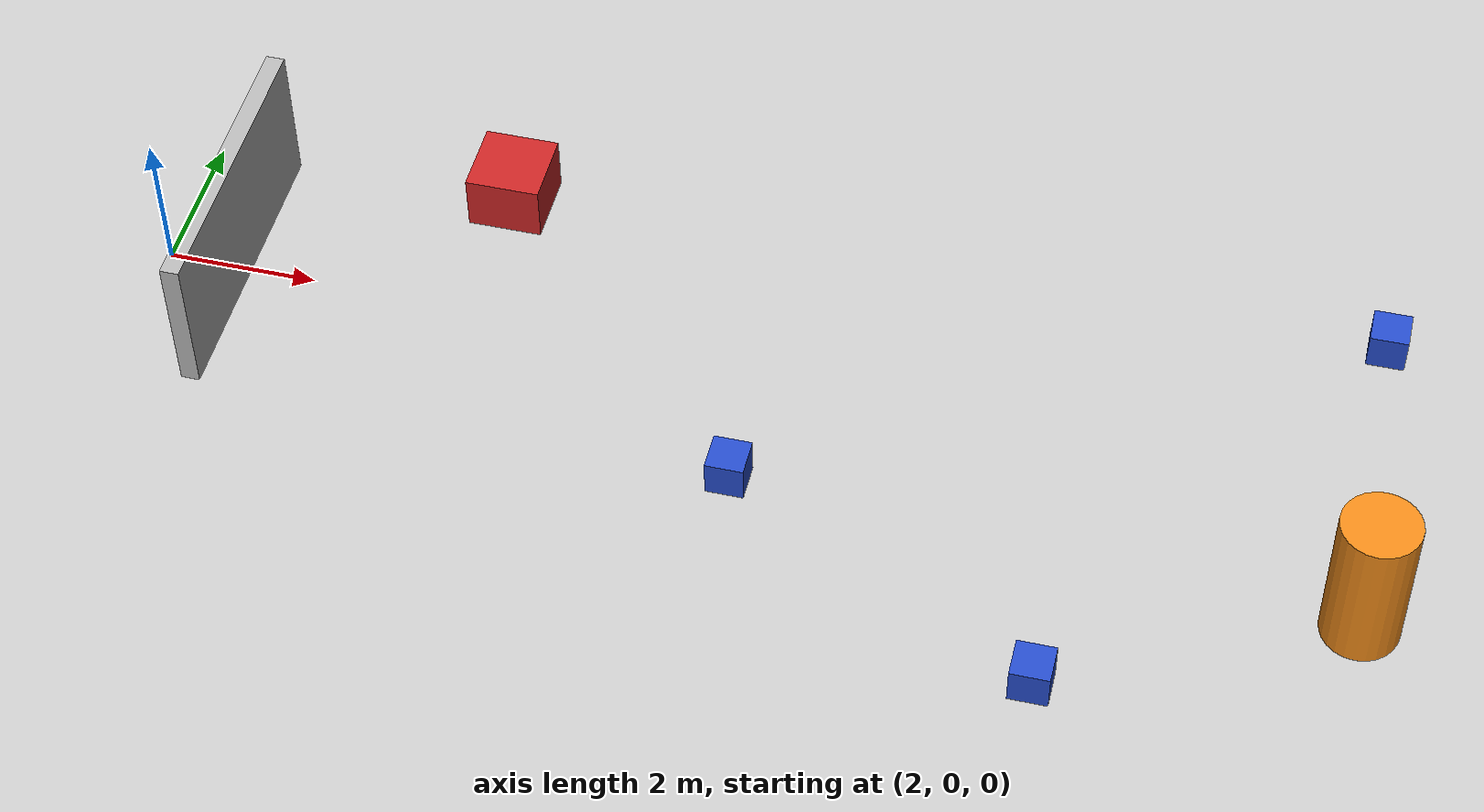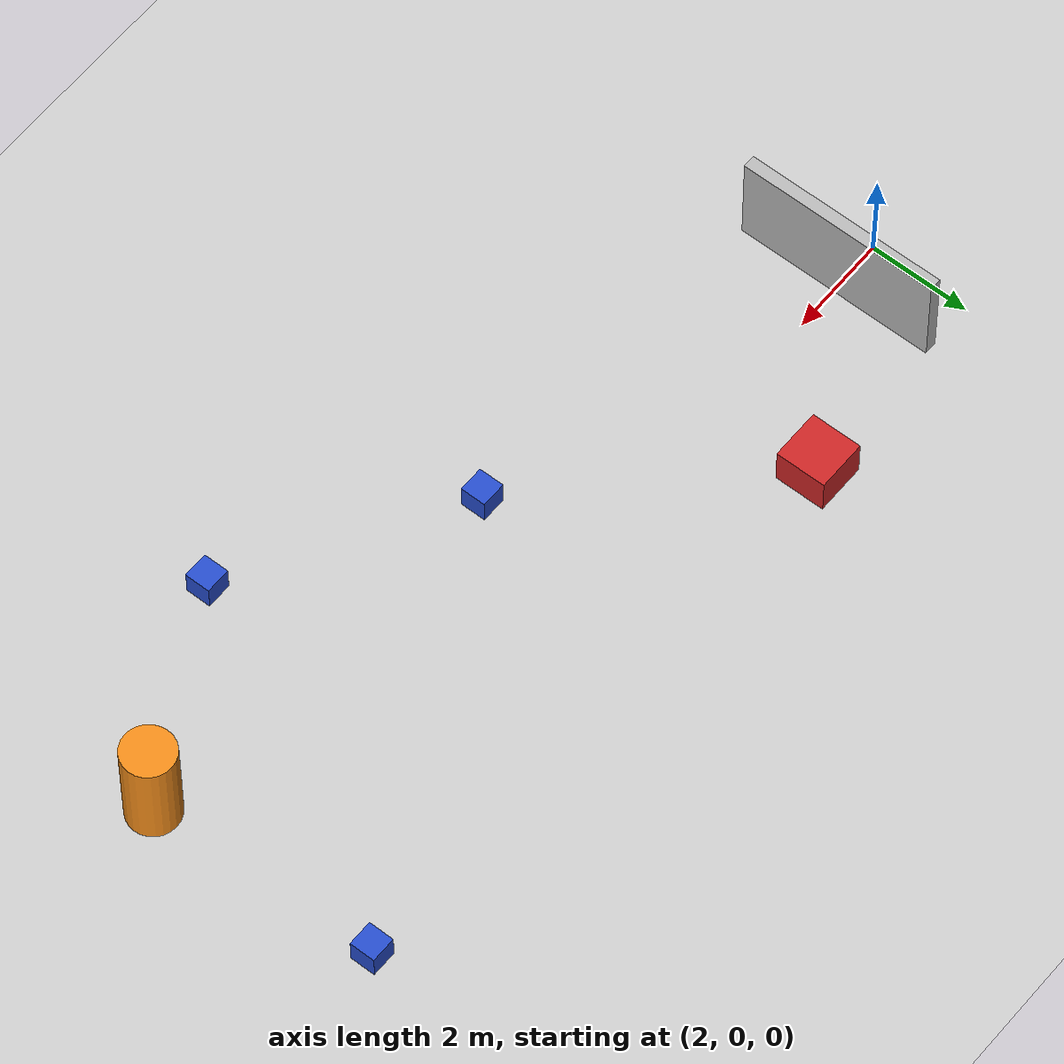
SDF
<sdf version="1.5">
 <world name="default">
  <include><uri>model://sun</uri></include>
  <include><uri>model://ground_plane</uri></include>
  <model name="wall">
   <pose>3 0 1 0 -0 0</pose>
   <link name="link">
    <collision name="collision"><geometry><box><size>0.25 4 2</size></box></geometry></collision>
    <visual name="visual">
     <geometry><box><size>0.25 4 2</size></box></geometry>
     <material><name>Gazebo/Orange</name><uri>file://media/materials/scripts/gazebo.material</uri></material>
    </visual>
   </link>
  </model>
  <model name="unit_cylinder">
   <pose>18.1779 -2.5 1 0 -0 0</pose>
   <link name="link">
    <collision name="collision">
     <geometry><cylinder><radius>0.5</radius><length>2</length></cylinder></geometry>
    </collision>
    <visual name="visual">
     <geometry><cylinder><radius>0.5</radius><length>2</length></cylinder></geometry>
     <material>
      <script><name>Gazebo/Orange</name><uri>file://media/materials/scripts/gazebo.material</uri></script>
     </material>
    </visual>
   </link>
  </model>
  <model name="unit_box">
   <pose>6.18343 2.02374 0.25 0 -0 0</pose>
   <link name="link">
    <collision name="collision"><geometry><box><size>1 1 1</size></box></geometry></collision>
    <visual name="visual">
     <geometry><box><size>1 1 1</size></box></geometry>
     <material>
      <script><name>Gazebo/Red</name><uri>file://media/materials/scripts/gazebo.material</uri></script>
     </material>
    </visual>
   </link>
  </model>
  <model name="unit_box_1">
   <pose>14.48165 -4.44491 0.5 0 -0 0</pose>
   <link name="link">
    <collision name="collision"><geometry><box><size>0.5 0.5 0.5</size></box></geometry></collision>
    <visual name="visual">
     <geometry><box><size>0.5 0.5 0.5</size></box></geometry>
     <material>
      <script><name>Gazebo/Blue</name><uri>file://media/materials/scripts/gazebo.material</uri></script>
     </material>
    </visual>
   </link>
  </model>
  <model name="unit_box_2">
   <pose>10.18343 -2.02374 0.25 0 -0 0</pose>
   <link name="link">
    <collision name="collision"><geometry><box><size>0.5 0.5 0.5</size></box></geometry></collision>
    <visual name="visual">
     <geometry><box><size>0.5 0.5 0.5</size></box></geometry>
     <material>
      <script><name>Gazebo/Blue</name><uri>file://media/materials/scripts/gazebo.material</uri></script>
     </material>
    </visual>
   </link>
  </model>
  <model name="unit_box_3">
   <pose>18 2.02374 0.25 0 -0 0</pose>
   <link name="link">
    <collision name="collision"><geometry><box><size>0.5 0.5 0.5</size></box></geometry></collision>
    <visual name="visual">
     <geometry><box><size>0.5 0.5 0.5</size></box></geometry>
     <material>
      <script><name>Gazebo/Blue</name><uri>file://media/materials/scripts/gazebo.material</uri></script>
     </material>
    </visual>
   </link>
  </model>
  <physics name="default_physics" default="0" type="ode">
   <gravity>0 0 -9.8066</gravity>
   <ode>
    <solver>
     <type>quick</type>
     <iters>10</iters>
     <sor>1.3</sor>
     <use_dynamic_moi_rescaling>0</use_dynamic_moi_rescaling>
    </solver>
    <constraints>
     <cfm>0</cfm>
     <erp>0.2</erp>
     <contact_max_correcting_vel>100</contact_max_correcting_vel>
     <contact_surface_layer>0.001</contact_surface_layer>
    </constraints>
   </ode>
   <max_step_size>0.004</max_step_size>
   <real_time_factor>1</real_time_factor>
   <real_time_update_rate>250</real_time_update_rate>
   <magnetic_field>6.0e-6 2.3e-5 -4.2e-5</magnetic_field>
  </physics>
 </world>
</sdf>
